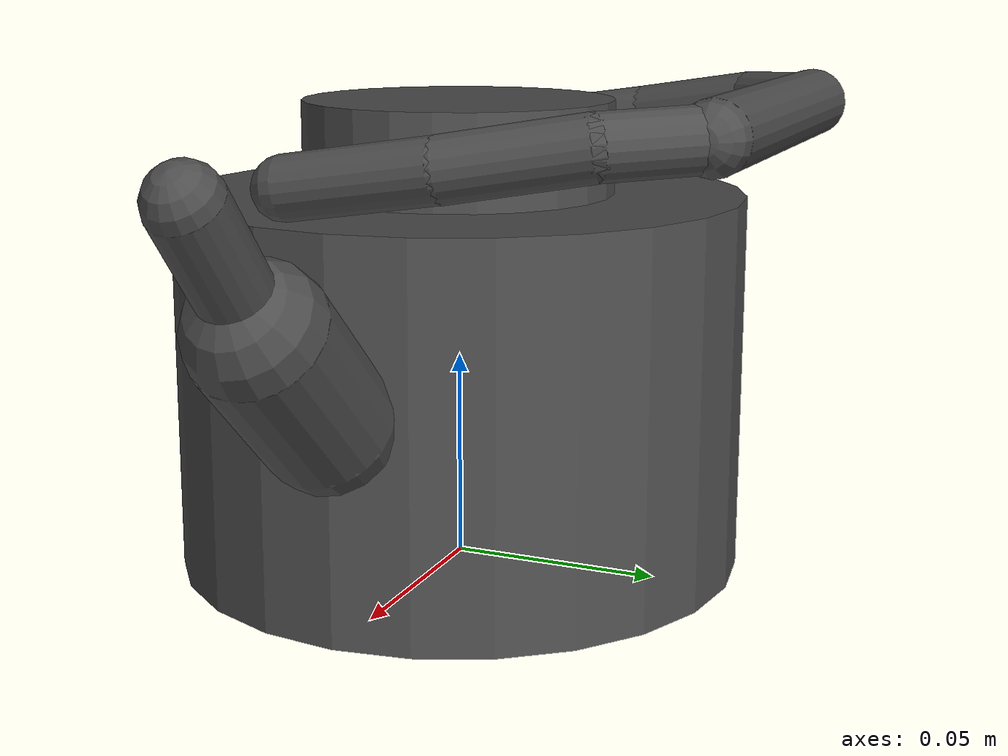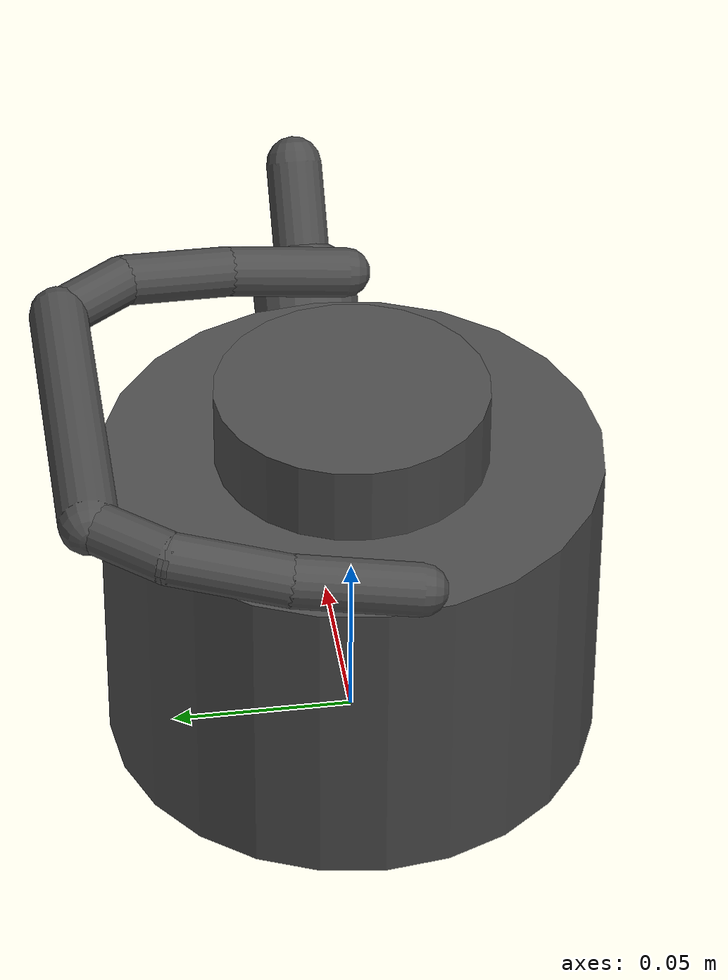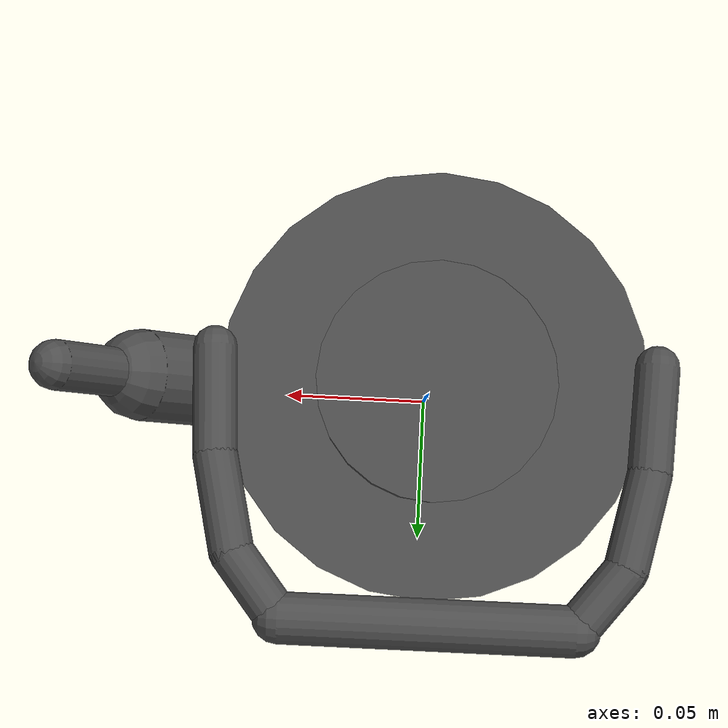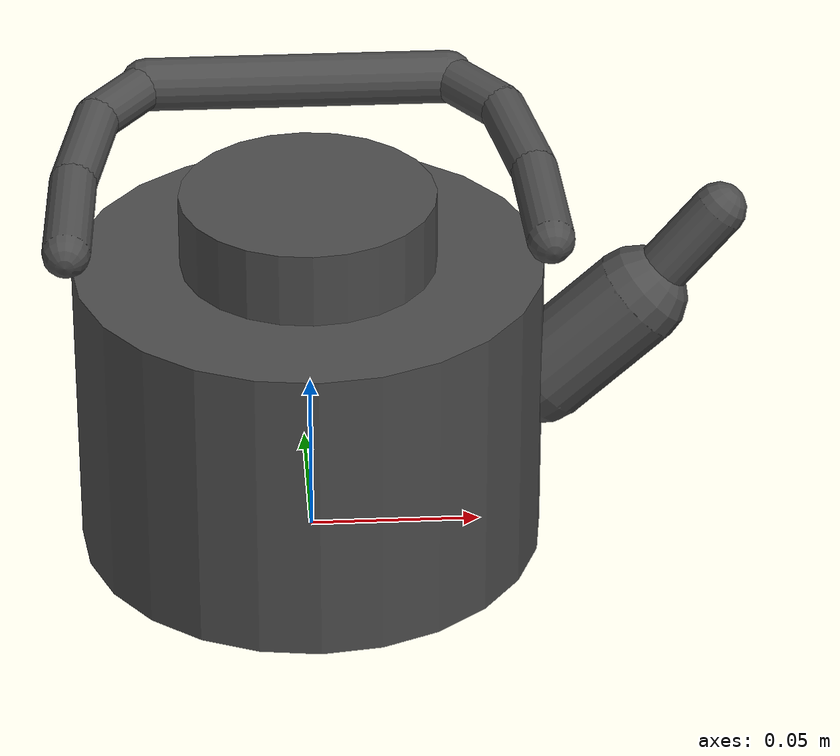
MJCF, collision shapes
<mujoco model="articulated_kettle">
    <compiler angle="radian" autolimits="false"/>

    <default>
        <default class="bail">
            <geom condim="6" friction="2.0 0.2 0.05"/>
        </default>
    </default>

    <asset>
        <mesh name="body_mesh" file="../meshes/obj/body.obj" scale="1.0 1.0 1.0"/>
        <mesh name="handle_mesh" file="../meshes/obj/handle.obj" scale="1.0 1.0 1.0"/>
        <mesh name="cap_mesh" file="../meshes/obj/cap.obj" scale="1.0 1.0 1.0"/>
    </asset>

    <worldbody>
        <body name="mug" pos="0 0 0" euler="0 0 3.14">
            <freejoint name="mug_jnt"/>

            <!-- Keep the free-joint object frame at the physical bottom center.
                 The kettle collision bottom was z=-0.100 in the original asset. -->
            <body name="kettle_body" pos="0 0 0.100">
            <inertial pos="-0.024 0 -0.043" mass="0.25" diaginertia="0.0010 0.0010 0.0008"/>

            <!-- Visual meshes (no collision) — body and cap are rigidly attached -->
            <geom type="mesh" mesh="body_mesh" name="visual_body" contype="0" conaffinity="0" group="1"/>
            <geom type="mesh" mesh="cap_mesh" name="visual_cap" contype="0" conaffinity="0" group="1"/>

            <!-- Collision: main body — pot shape approximated with 2 stacked cylinders -->
            <!-- Lower/wide region: radius=0.068, z from -0.100 to -0.010 -->
            <geom type="cylinder" size="0.068 0.045" pos="0 0 -0.055" rgba="0.3 0.3 0.3 0.3" name="collision_body_lower" group="3"/>
            <!-- Upper/neck region: radius=0.050, z from -0.012 to 0.012 -->
            <geom type="cylinder" size="0.037 0.012" pos="0 0 0.000" rgba="0.3 0.3 0.3 0.3" name="collision_body_upper" group="3"/>

            <!-- Collision: cap (fixed to body) -->
            <geom type="cylinder" size="0.037 0.012" pos="0 0 0.000" rgba="0.3 0.3 0.3 0.3" name="collision_cap" group="3"/>

            <!-- Collision: spout (extends in -x direction) -->
            <!-- Base to mid: tapers from body wall -->
            <geom type="capsule" fromto="-0.068 0 -0.050 -0.095 0 -0.025" size="0.015" rgba="0.3 0.3 0.3 0.3" name="collision_spout_1" group="3"/>
            <!-- Mid to tip: narrow spout -->
            <geom type="capsule" fromto="-0.095 0 -0.025 -0.118 0 0.003" size="0.008" rgba="0.3 0.3 0.3 0.3" name="collision_spout_2" group="3"/>

            <!-- CoM visualization -->

            <body name="handle" pos="0 0 0" childclass="bail">
                <inertial pos="0 -0.045 0.007" mass="0.05" diaginertia="0.0001 0.0001 0.0001"/>

                <joint name="kettle_handle_hinge" type="hinge" pos="0 0.008 -0.001" axis="1 0 0" range="-2.0 -1.0" damping="0.0" armature="0.00" stiffness="0.0" springref="0.0"/>

                <!-- Visual mesh (no collision) -->
                <geom type="mesh" mesh="handle_mesh" name="visual_handle" contype="0" conaffinity="0" group="1"/>

                <!-- Collision: 8 capsules tracing the U-shaped bail handle -->
                <!-- Handle wire radius ~0.007 -->
                <!-- Right arm: from attachment down -->
                <geom type="capsule" fromto="0.069 0.008 -0.001 0.067 -0.025 0.004" size="0.007" rgba="0.3 0.3 0.3 0.3" name="collision_handle_1" group="3"/>
                <geom type="capsule" fromto="0.067 -0.025 0.004 0.060 -0.055 0.009" size="0.007" rgba="0.3 0.3 0.3 0.3" name="collision_handle_2" group="3"/>
                <!-- Right corner to center bottom -->
                <geom type="capsule" fromto="0.060 -0.055 0.009 0.045 -0.074 0.010" size="0.007" rgba="0.3 0.3 0.3 0.3" name="collision_handle_3" group="3"/>
                <!-- Bottom arc: right corner to left corner -->
                <geom type="capsule" fromto="0.045 -0.074 0.010 -0.045 -0.074 0.010" size="0.008" rgba="0.3 0.3 0.3 0.3" name="collision_handle_4" group="3"/>
                <geom type="capsule" fromto="-0.045 -0.074 0.010 -0.060 -0.055 0.009" size="0.007" rgba="0.3 0.3 0.3 0.3" name="collision_handle_5" group="3"/>
                <!-- Left arm: up to attachment -->
                <geom type="capsule" fromto="-0.060 -0.055 0.009 -0.067 -0.025 0.004" size="0.007" rgba="0.3 0.3 0.3 0.3" name="collision_handle_6" group="3"/>
                <geom type="capsule" fromto="-0.067 -0.025 0.004 -0.069 0.008 -0.001" size="0.007" rgba="0.3 0.3 0.3 0.3" name="collision_handle_7" group="3"/>

                <!-- CoM visualization -->
            </body>
            </body>
        </body>
    </worldbody>

    <contact>
        <!-- Handle capsules vs body lower cylinder (7 pairs) -->
        <pair geom1="collision_body_lower" geom2="collision_handle_1"/>
        <pair geom1="collision_body_lower" geom2="collision_handle_2"/>
        <pair geom1="collision_body_lower" geom2="collision_handle_3"/>
        <pair geom1="collision_body_lower" geom2="collision_handle_4"/>
        <pair geom1="collision_body_lower" geom2="collision_handle_5"/>
        <pair geom1="collision_body_lower" geom2="collision_handle_6"/>
        <pair geom1="collision_body_lower" geom2="collision_handle_7"/>

        <!-- Handle capsules vs body upper cylinder (7 pairs) -->
        <pair geom1="collision_body_upper" geom2="collision_handle_1"/>
        <pair geom1="collision_body_upper" geom2="collision_handle_2"/>
        <pair geom1="collision_body_upper" geom2="collision_handle_3"/>
        <pair geom1="collision_body_upper" geom2="collision_handle_4"/>
        <pair geom1="collision_body_upper" geom2="collision_handle_5"/>
        <pair geom1="collision_body_upper" geom2="collision_handle_6"/>
        <pair geom1="collision_body_upper" geom2="collision_handle_7"/>

        <!-- Handle capsules vs cap (7 pairs) -->
        <pair geom1="collision_cap" geom2="collision_handle_1"/>
        <pair geom1="collision_cap" geom2="collision_handle_2"/>
        <pair geom1="collision_cap" geom2="collision_handle_3"/>
        <pair geom1="collision_cap" geom2="collision_handle_4"/>
        <pair geom1="collision_cap" geom2="collision_handle_5"/>
        <pair geom1="collision_cap" geom2="collision_handle_6"/>
        <pair geom1="collision_cap" geom2="collision_handle_7"/>

        <!-- Handle capsules vs spout (2 x 7 = 14 pairs) -->
        <pair geom1="collision_spout_1" geom2="collision_handle_1"/>
        <pair geom1="collision_spout_1" geom2="collision_handle_2"/>
        <pair geom1="collision_spout_1" geom2="collision_handle_3"/>
        <pair geom1="collision_spout_1" geom2="collision_handle_4"/>
        <pair geom1="collision_spout_1" geom2="collision_handle_5"/>
        <pair geom1="collision_spout_1" geom2="collision_handle_6"/>
        <pair geom1="collision_spout_1" geom2="collision_handle_7"/>

        <pair geom1="collision_spout_2" geom2="collision_handle_1"/>
        <pair geom1="collision_spout_2" geom2="collision_handle_2"/>
        <pair geom1="collision_spout_2" geom2="collision_handle_3"/>
        <pair geom1="collision_spout_2" geom2="collision_handle_4"/>
        <pair geom1="collision_spout_2" geom2="collision_handle_5"/>
        <pair geom1="collision_spout_2" geom2="collision_handle_6"/>
        <pair geom1="collision_spout_2" geom2="collision_handle_7"/>
    </contact>

</mujoco>
